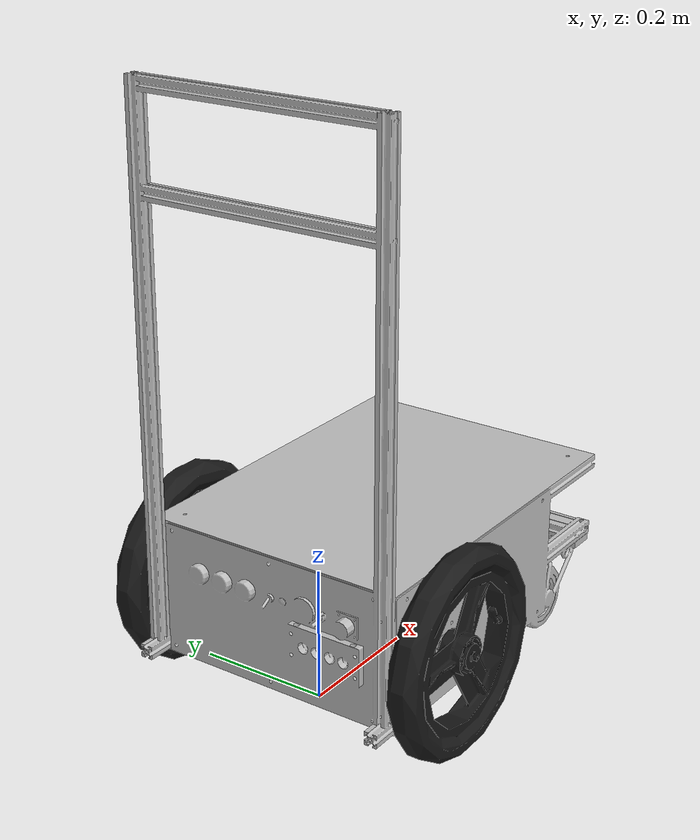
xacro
<?xml version="1.0"?>

<!-- Revolute-Revolute Manipulator -->
<robot name="icart_box" xmlns:xacro="http://www.ros.org/wiki/xacro">

  <!-- Constants for robot dimensions -->
  <xacro:property name="PI" value="3.1415926535897931"/>

  <!-- Import Rviz colors -->
  <xacro:include filename="$(find icart_mini_description)/urdf/materials.xacro"/>
  <xacro:include filename="$(find orne_description)/urdf/orne_x.gazebo"/>

  <!-- Base Link -->
  <link name="base_link">

    <visual>
      <origin xyz="-0.03 0 0.0705" rpy="0 0 0"/>
      <geometry>
	<mesh filename="package://orne_description/meshes/orne_box_stl/base.stl" scale="1 1 1"/>
      </geometry>
      <material name="silver">
        <color rgba="${192/255} ${192/255} ${192/255} 1.0"/>
      </material>
    </visual>

    <collision>
      <origin xyz="0.15 0.0  0.2" rpy="0 0 0"/>
      <geometry>
	<box size=".60 .40 .3"/>
      </geometry>
    </collision>

    <collision>
      <origin xyz="0.301 -0.141  0.075" rpy="0 1.57 1.57"/>
      <geometry>
	<cylinder length="0.03" radius="0.075"/>
      </geometry>
    </collision>

    <collision>
      <origin xyz="0.301 0.141  0.075" rpy="0 1.57 1.57"/>
      <geometry>
	<cylinder length="0.03" radius="0.075"/>
      </geometry>
    </collision>

    <inertial>
      <mass value="20" />
      <origin xyz="0 0 0" rpy="0 0 0" />
      <inertia ixx="1" ixy="0" ixz="0" iyy="1" iyz="0" izz="1" />
    </inertial>

  </link>

  <!-- left wheel -->
  <link name="visual_left_wheel">

    <visual>
      <origin xyz="0 0 0" rpy="0 1.5707 1.5707"/>
      <geometry>
        <mesh filename="package://orne_description/meshes/wheels/tire.stl" scale="1 1 1"/>
      </geometry>
      <material name="dark">
        <color rgba="0.1 0.1 0.1 1.5"/>
      </material>
    </visual>

  </link>

  <joint type="fixed" name="visual_left_wheel_hinge">
    <origin xyz="0 0.23 0.1518" rpy="0 0 0"/>
    <child link="visual_left_wheel">visual_left_wheel</child>
    <parent link="base_link">base_link</parent>
    <axis xyz="0 1 0"/>
  </joint>

  <link name="left_wheel">

    <collision name="collision">
      <origin xyz="0 0 0" rpy="0 1.5707 1.5707" />
      <geometry>
        <cylinder length="0.03" radius="0.151" />
      </geometry>
    </collision>

    <inertial>
      <mass value="1" />
      <origin xyz="0 0 0" />
      <inertia ixx="0.1" ixy="0" ixz="0" iyy="0.1" iyz="0" izz="0.1" />
    </inertial>

  </link>

  <joint type="revolute" name="left_wheel_hinge">
    <origin xyz="0 0.23 0.1518" rpy="0 0 0"/>
    <child link="left_wheel">left_wheel</child>
    <parent link="base_link">base_link</parent>
    <axis xyz="0 1 0"/>
    <limit effort="100" velocity="100.0" lower="-5000" upper="5000" />
  </joint>

  <!-- right wheel -->
  <link name="visual_right_wheel">

    <visual>
      <origin xyz="0 0 0" rpy="0 1.5707 1.5707"/>
      <geometry>
        <mesh filename="package://orne_description/meshes/wheels/tire.stl" scale="1 1 1"/>
      </geometry>
      <material name="dark"/>
    </visual>

  </link>

  <joint type="fixed" name="visual_right_wheel_hinge">
    <origin xyz="0 -0.23 0.1518" rpy="0 0 0"/>
    <child link="visual_right_wheel">visual_right_wheel</child>
    <parent link="base_link">base_link</parent>
    <axis xyz="0 1 0"/>
  </joint>

  <link name="right_wheel">

    <collision name="collision">
      <origin xyz="0 0 0" rpy="0 1.5707 1.5707" />
      <geometry>
        <cylinder length="0.03" radius="0.151" />
      </geometry>
    </collision>

    <inertial>
      <mass value="1" />
      <origin xyz="0 0 0" />
      <inertia ixx="0.1" ixy="0" ixz="0" iyy="0.1" iyz="0" izz="0.1" />
    </inertial>

  </link>

  <joint type="revolute" name="right_wheel_hinge">
    <origin xyz="0 -0.23 0.1518" rpy="0 0 0"/>
    <child link="right_wheel">right_wheel</child>
    <parent link="base_link">base_link</parent>
    <axis xyz="0 1 0"/>
    <limit effort="100" velocity="100.0" lower="-5000" upper="5000" />
  </joint>

  <transmission name="tran1">
    <type>transmission_interface/SimpleTransmission</type>

    <joint name="left_wheel_hinge">
      <hardwareInterface>VelocityJointInterface</hardwareInterface>
    </joint>

    <actuator name="left_motor">
      <hardwareInterface>VelocityJointInterface</hardwareInterface>
      <mechanicalReduction>1</mechanicalReduction>
    </actuator>

  </transmission>

  <transmission name="tran2">
    <type>transmission_interface/SimpleTransmission</type>

    <joint name="right_wheel_hinge">
      <hardwareInterface>VelocityJointInterface</hardwareInterface>
    </joint>

    <actuator name="right_motor">
      <hardwareInterface>VelocityJointInterface</hardwareInterface>
      <mechanicalReduction>1</mechanicalReduction>
    </actuator>

  </transmission>

</robot>
